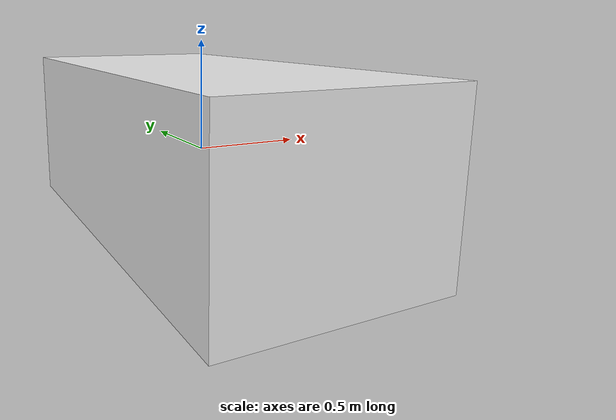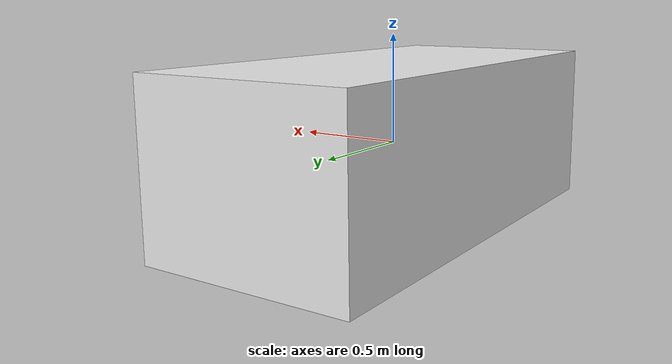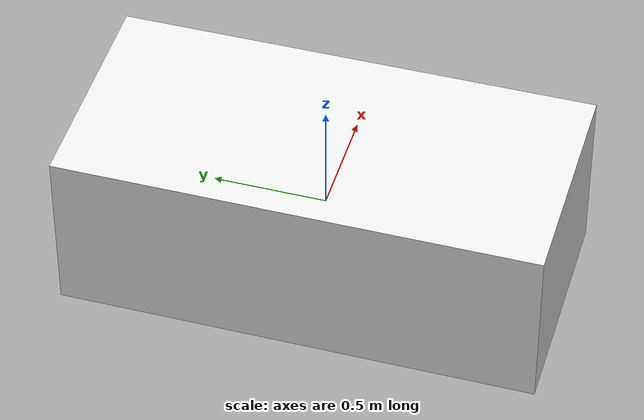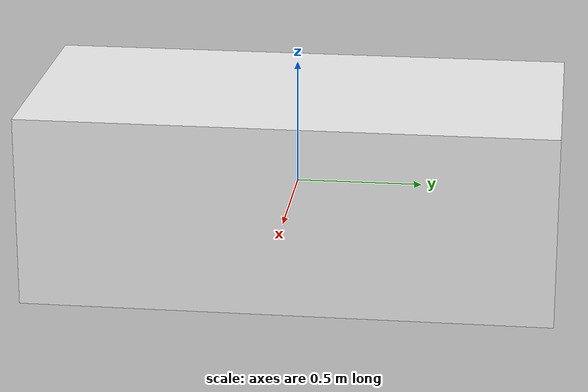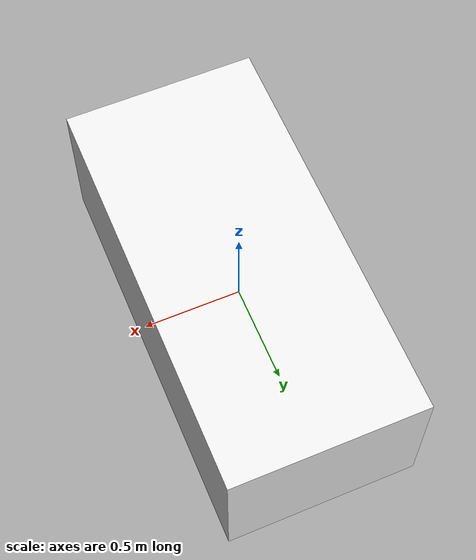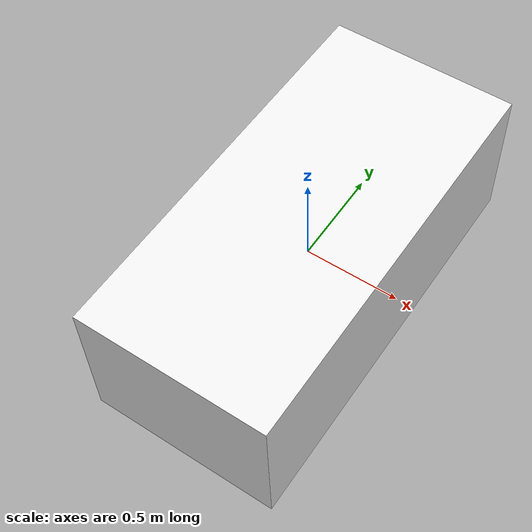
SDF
<?xml version='1.0'?>
<sdf version='1.7'>
  <model name='table_future_labs'>
    <link name='link'>
      <self_collide>0</self_collide>
      <enable_wind>0</enable_wind>
      <kinematic>0</kinematic>
      <inertial>
        <inertia>
          <ixx>0</ixx>
          <ixy>0</ixy>
          <ixz>0</ixz>
          <iyy>0</iyy>
          <iyz>0</iyz>
          <izz>0</izz>
        </inertia>
        <mass>0</mass>
        <pose>0 0 0 0 -0 0</pose>
      </inertial>
      <pose>0 0 0 0 -0 0</pose>
      <gravity>1</gravity>
      <visual name='visual_folding_table'>
        <geometry>
          <box>
            <size>0.995979 2.106 0.767823</size>
          </box>
        </geometry>
        <material>
          <script>
            <uri>file://media/materials/scripts/gazebo.material</uri>
            <name>Gazebo/White</name>
          </script>
          <shader type='pixel'>
            <normal_map>__default__</normal_map>
          </shader>
          <ambient>1 1 1 1</ambient>
          <diffuse>1 1 1 1</diffuse>
          <specular>0 0 0 1</specular>
          <emissive>0 0 0 1</emissive>
        </material>
        <pose>0 0 0 0 -0 0</pose>
        <transparency>0</transparency>
        <cast_shadows>1</cast_shadows>
      </visual>
      <collision name='collision_folding_table'>
        <laser_retro>0</laser_retro>
        <max_contacts>10</max_contacts>
        <pose>0 0 0 0 -0 0</pose>
        <geometry>
          <box>
            <size>0.995979 2.106 0.767823</size>
          </box>
        </geometry>
        <surface>
          <friction>
            <ode>
              <mu>1</mu>
              <mu2>1</mu2>
              <fdir1>0 0 0</fdir1>
              <slip1>0</slip1>
              <slip2>0</slip2>
            </ode>
            <torsional>
              <coefficient>1</coefficient>
              <patch_radius>0</patch_radius>
              <surface_radius>0</surface_radius>
              <use_patch_radius>1</use_patch_radius>
              <ode>
                <slip>0</slip>
              </ode>
            </torsional>
          </friction>
          <bounce>
            <restitution_coefficient>0</restitution_coefficient>
            <threshold>1e+06</threshold>
          </bounce>
          <contact>
            <collide_without_contact>0</collide_without_contact>
            <collide_without_contact_bitmask>1</collide_without_contact_bitmask>
            <collide_bitmask>1</collide_bitmask>
            <ode>
              <soft_cfm>0</soft_cfm>
              <soft_erp>0.2</soft_erp>
              <kp>1e+13</kp>
              <kd>1</kd>
              <max_vel>0.01</max_vel>
              <min_depth>0</min_depth>
            </ode>
            <bullet>
              <split_impulse>1</split_impulse>
              <split_impulse_penetration_threshold>-0.01</split_impulse_penetration_threshold>
              <soft_cfm>0</soft_cfm>
              <soft_erp>0.2</soft_erp>
              <kp>1e+13</kp>
              <kd>1</kd>
            </bullet>
          </contact>
        </surface>
      </collision>
    </link>
    <static>1</static>
    <allow_auto_disable>1</allow_auto_disable>
  </model>
</sdf>
